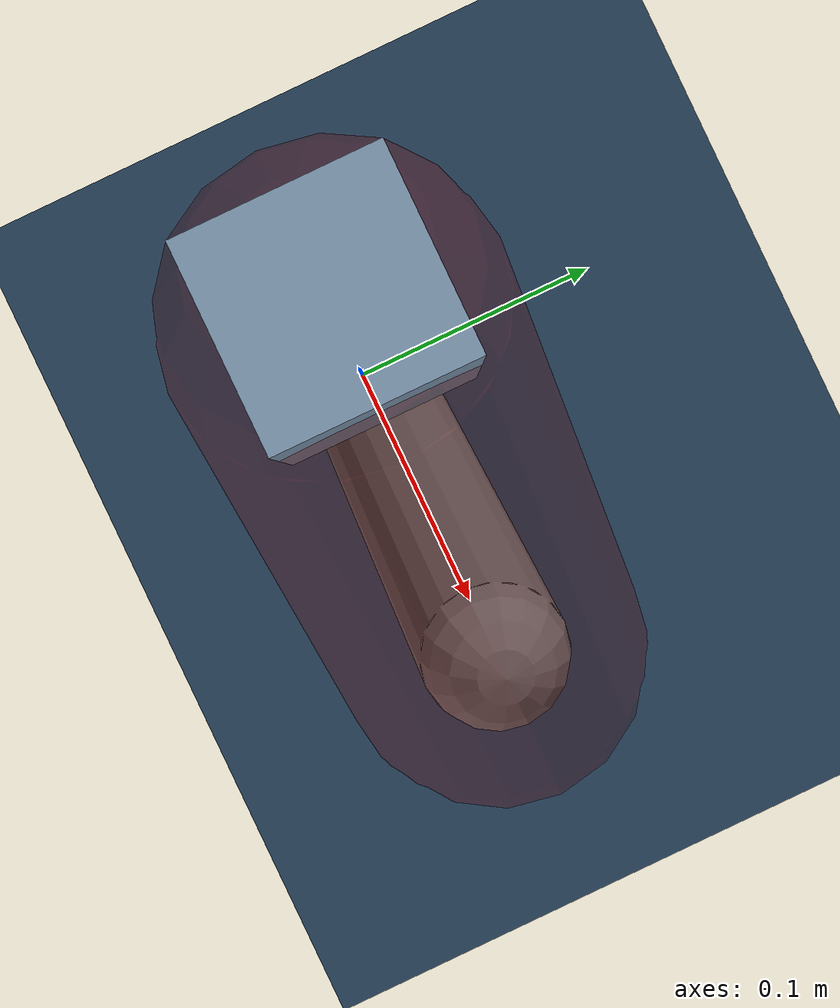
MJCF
<mujoco model="Hopper2D">
	<compiler inertiafromgeom="true" angle="radian" />
	<option timestep="0.001" integrator="implicit" cone="elliptic" solver="Newton" tolerance="1e-10" />

	<default>
		<geom contype="1" conaffinity="1" condim="3" friction="2 0.005 0.0001" solref="0.005 1" />
		<joint limited="true" damping="0.1" />
	</default>

	<asset>
		<texture name="skybox" type="skybox" builtin="gradient" rgb1=".4 .6 .8" rgb2="0 0 0" width="800" height="800" />
		<texture name="grid" type="2d" builtin="checker" rgb1=".1 .2 .3" rgb2=".2 .3 .4" width="300" height="300" mark="edge" markrgb=".2 .3 .4" />
		<material name="ground" texture="grid" texrepeat="1 1" texuniform="true" reflectance="0.1" />
		<material name="leg" rgba="0.5 0.6 0.7 1" />
	</asset>

	<worldbody>

		<geom name="floor" type="plane" size="5 5 0.25" material="ground" />

		<light directional="false" diffuse="0.8 0.8 0.8" specular="0.3 0.3 0.3" pos="0 0 2" dir="0 0 -1" />
		<light mode="targetbodycom" target="base" directional="false" diffuse="0.8 0.8 0.8" specular="0.3 0.3 0.3" pos="0 0 2" dir="0 0 -1" />

		<camera name="fixed" pos="0 -2 1" xyaxes="1 0 0 0 0 1" />
		<camera name="tracking" mode="trackcom" pos="0 -3 1" />

		<body name="root" pos="0 0 0.5568977259618969">
			<joint name="slide_x" type="slide" axis="1 0 0" range="-100 100" />
			<joint name="slide_z" type="slide" axis="0 0 1" range="0 10" />

			<body name="base" pos="0 0 0">
				<geom name="torso" type="box" size="0.03 0.03 0.1" mass="2.24" material="leg" />

				<body name="link1" pos="0 0 0" euler="0 1.1151365471775663 0">
					<joint type="hinge" axis="0 -1 0" pos="0 0 0" name="hinge1" limited="true" range="-3.14 3.14" stiffness="0" damping="0.1" />
					<geom name="thigh" type="capsule" fromto="0 0 0 0.25310475417239797 0 0" size="0.05" rgba="0.5 0 0 0.3" mass="0.8644723608482346" />

					<body name="link2" pos="0.25310475417239797 0 0" euler="0 0.781521188188478 0">
						<joint type="hinge" axis="0 -1 0" pos="0 0 0" name="hinge2" limited="true" range="-3.14 3.14" stiffness="0" damping="0.1" />
						<geom name="shank" type="capsule" fromto="0 0 0 0.3479265495021706 0 0" size="0.025" mass="0.5222412396017365" />

					</body>
				</body>
			</body>
		</body>
	</worldbody>

	<actuator>
		<motor name="torque1" joint="hinge1" ctrlrange="-67.36993617797408 67.36993617797408" ctrllimited="true" gear="1" />
		<motor name="torque2" joint="hinge2" ctrlrange="-30.930940767111956 30.930940767111956" ctrllimited="true" gear="1" />
	</actuator>
</mujoco>
